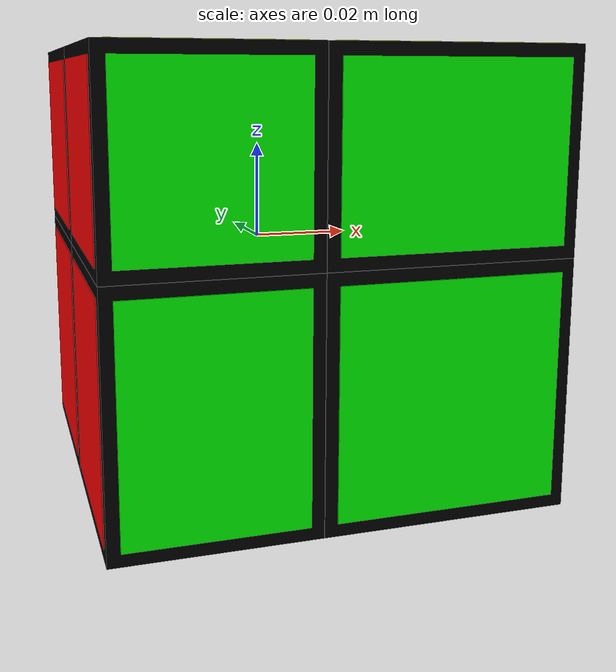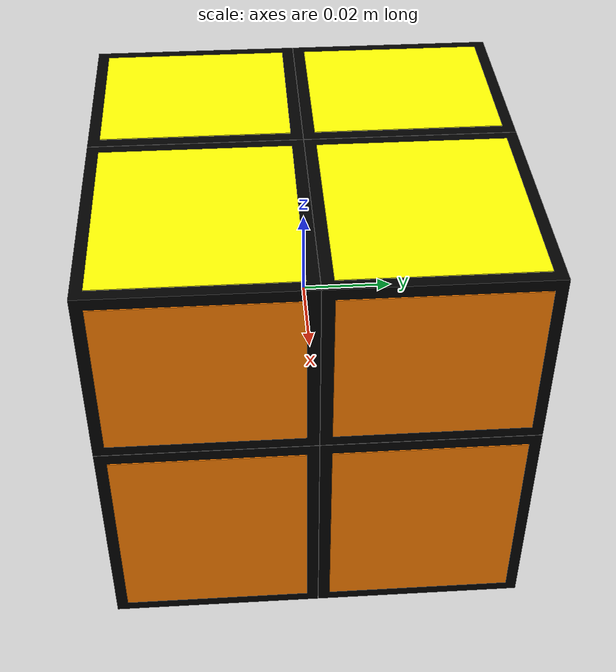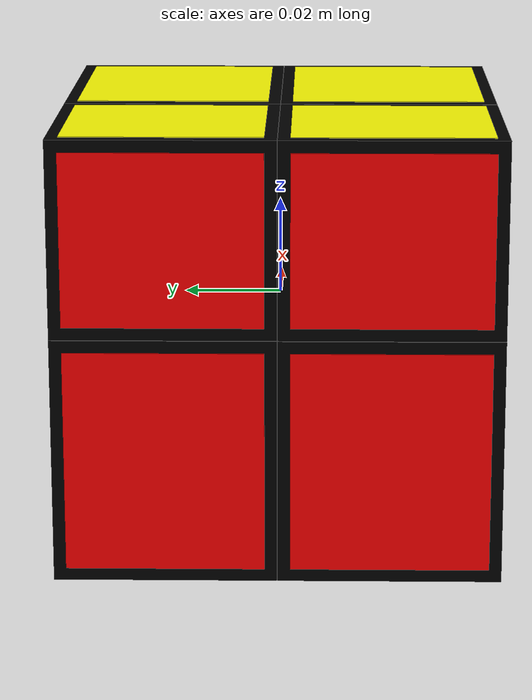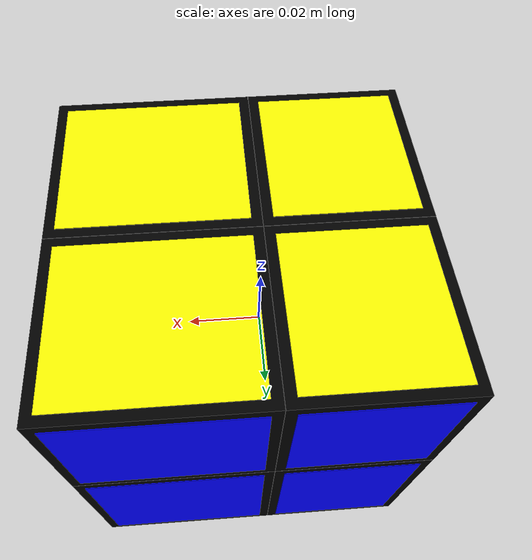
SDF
<?xml version="1.0" ?>
<sdf version="1.7">
	<model name="mirror_cube_2x2">
		<link name="center"/>
		<link name="cubie_0_0_0">
			<pose>-0.020050000000000002 -0.02255 -0.02505 0.0 0.0 0.0</pose>
			<inertial>
				<mass>0.0351</mass>
				<inertia>
					<ixx>1.3235625e-05</ixx>
					<ixy>0.0</ixy>
					<ixz>0.0</ixz>
					<iyy>1.1992499999999999e-05</iyy>
					<iyz>0.0</iyz>
					<izz>1.0603125e-05</izz>
				</inertia>
			</inertial>
			<collision name="collision">
				<geometry>
					<box>
						<size>0.04 0.045 0.049999999999999996</size>
					</box>
				</geometry>
				<surface>
					<friction>
						<ode>
							<mu>0.6</mu>
							<mu2>0.6</mu2>
						</ode>
					</friction>
				</surface>
			</collision>
			<visual name="black">
				<geometry>
					<box>
						<size>0.04 0.045 0.049999999999999996</size>
					</box>
				</geometry>
				<material>
					<diffuse>0 0 0 1</diffuse>
				</material>
			</visual>
			<visual name="red">
				<pose>-0.02 0.0 0.0 0.0 0.0 0.0</pose>
				<geometry>
					<box>
						<size>0.00035 0.04 0.045</size>
					</box>
				</geometry>
				<material>
					<diffuse>1 0 0 1</diffuse>
				</material>
			</visual>
			<visual name="green">
				<pose>0.0 -0.0225 0.0 0.0 0.0 0.0</pose>
				<geometry>
					<box>
						<size>0.035 0.0004 0.045</size>
					</box>
				</geometry>
				<material>
					<diffuse>0 1 0 1</diffuse>
				</material>
			</visual>
			<visual name="white">
				<pose>0.0 0.0 -0.024999999999999998 0.0 0.0 0.0</pose>
				<geometry>
					<box>
						<size>0.035 0.04 0.00045</size>
					</box>
				</geometry>
				<material>
					<diffuse>1 1 1 1</diffuse>
				</material>
			</visual>
		</link>
		<joint name="ball_0_0_0" type="ball">
			<pose>0.020050000000000002 0.02255 0.02505 -0.0 -0.0 -0.0</pose>
			<parent>center</parent>
			<child>cubie_0_0_0</child>
			<axis>
				<dynamics>
					<damping>0.1</damping>
				</dynamics>
				<limit>
					<effort>0</effort>
				</limit>
			</axis>
		</joint>
		<link name="cubie_0_0_1">
			<pose>-0.020050000000000002 -0.02255 0.020050000000000002 0.0 0.0 0.0</pose>
			<inertial>
				<mass>0.02808</mass>
				<inertia>
					<ixx>8.482499999999999e-06</ixx>
					<ixy>0.0</ixy>
					<ixz>0.0</ixz>
					<iyy>7.488000000000001e-06</iyy>
					<iyz>0.0</iyz>
					<izz>8.482499999999999e-06</izz>
				</inertia>
			</inertial>
			<collision name="collision">
				<geometry>
					<box>
						<size>0.04 0.045 0.04</size>
					</box>
				</geometry>
				<surface>
					<friction>
						<ode>
							<mu>0.6</mu>
							<mu2>0.6</mu2>
						</ode>
					</friction>
				</surface>
			</collision>
			<visual name="black">
				<geometry>
					<box>
						<size>0.04 0.045 0.04</size>
					</box>
				</geometry>
				<material>
					<diffuse>0 0 0 1</diffuse>
				</material>
			</visual>
			<visual name="red">
				<pose>-0.02 0.0 0.0 0.0 0.0 0.0</pose>
				<geometry>
					<box>
						<size>0.00035 0.04 0.035</size>
					</box>
				</geometry>
				<material>
					<diffuse>1 0 0 1</diffuse>
				</material>
			</visual>
			<visual name="green">
				<pose>0.0 -0.0225 0.0 0.0 0.0 0.0</pose>
				<geometry>
					<box>
						<size>0.035 0.0004 0.035</size>
					</box>
				</geometry>
				<material>
					<diffuse>0 1 0 1</diffuse>
				</material>
			</visual>
			<visual name="yellow">
				<pose>0.0 0.0 0.02 0.0 0.0 0.0</pose>
				<geometry>
					<box>
						<size>0.035 0.04 0.00035</size>
					</box>
				</geometry>
				<material>
					<diffuse>1 1 0 1</diffuse>
				</material>
			</visual>
		</link>
		<joint name="ball_0_0_1" type="ball">
			<pose>0.020050000000000002 0.02255 -0.020050000000000002 -0.0 -0.0 -0.0</pose>
			<parent>center</parent>
			<child>cubie_0_0_1</child>
			<axis>
				<dynamics>
					<damping>0.1</damping>
				</dynamics>
				<limit>
					<effort>0</effort>
				</limit>
			</axis>
		</joint>
		<link name="cubie_0_1_0">
			<pose>-0.020050000000000002 0.02255 -0.02505 0.0 0.0 0.0</pose>
			<inertial>
				<mass>0.0351</mass>
				<inertia>
					<ixx>1.3235625e-05</ixx>
					<ixy>0.0</ixy>
					<ixz>0.0</ixz>
					<iyy>1.1992499999999999e-05</iyy>
					<iyz>0.0</iyz>
					<izz>1.0603125e-05</izz>
				</inertia>
			</inertial>
			<collision name="collision">
				<geometry>
					<box>
						<size>0.04 0.045 0.049999999999999996</size>
					</box>
				</geometry>
				<surface>
					<friction>
						<ode>
							<mu>0.6</mu>
							<mu2>0.6</mu2>
						</ode>
					</friction>
				</surface>
			</collision>
			<visual name="black">
				<geometry>
					<box>
						<size>0.04 0.045 0.049999999999999996</size>
					</box>
				</geometry>
				<material>
					<diffuse>0 0 0 1</diffuse>
				</material>
			</visual>
			<visual name="red">
				<pose>-0.02 0.0 0.0 0.0 0.0 0.0</pose>
				<geometry>
					<box>
						<size>0.00035 0.04 0.045</size>
					</box>
				</geometry>
				<material>
					<diffuse>1 0 0 1</diffuse>
				</material>
			</visual>
			<visual name="blue">
				<pose>0.0 0.0225 0.0 0.0 0.0 0.0</pose>
				<geometry>
					<box>
						<size>0.035 0.0004 0.045</size>
					</box>
				</geometry>
				<material>
					<diffuse>0 0 1 1</diffuse>
				</material>
			</visual>
			<visual name="white">
				<pose>0.0 0.0 -0.024999999999999998 0.0 0.0 0.0</pose>
				<geometry>
					<box>
						<size>0.035 0.04 0.00045</size>
					</box>
				</geometry>
				<material>
					<diffuse>1 1 1 1</diffuse>
				</material>
			</visual>
		</link>
		<joint name="ball_0_1_0" type="ball">
			<pose>0.020050000000000002 -0.02255 0.02505 -0.0 -0.0 -0.0</pose>
			<parent>center</parent>
			<child>cubie_0_1_0</child>
			<axis>
				<dynamics>
					<damping>0.1</damping>
				</dynamics>
				<limit>
					<effort>0</effort>
				</limit>
			</axis>
		</joint>
		<link name="cubie_0_1_1">
			<pose>-0.020050000000000002 0.02255 0.020050000000000002 0.0 0.0 0.0</pose>
			<inertial>
				<mass>0.02808</mass>
				<inertia>
					<ixx>8.482499999999999e-06</ixx>
					<ixy>0.0</ixy>
					<ixz>0.0</ixz>
					<iyy>7.488000000000001e-06</iyy>
					<iyz>0.0</iyz>
					<izz>8.482499999999999e-06</izz>
				</inertia>
			</inertial>
			<collision name="collision">
				<geometry>
					<box>
						<size>0.04 0.045 0.04</size>
					</box>
				</geometry>
				<surface>
					<friction>
						<ode>
							<mu>0.6</mu>
							<mu2>0.6</mu2>
						</ode>
					</friction>
				</surface>
			</collision>
			<visual name="black">
				<geometry>
					<box>
						<size>0.04 0.045 0.04</size>
					</box>
				</geometry>
				<material>
					<diffuse>0 0 0 1</diffuse>
				</material>
			</visual>
			<visual name="red">
				<pose>-0.02 0.0 0.0 0.0 0.0 0.0</pose>
				<geometry>
					<box>
						<size>0.00035 0.04 0.035</size>
					</box>
				</geometry>
				<material>
					<diffuse>1 0 0 1</diffuse>
				</material>
			</visual>
			<visual name="blue">
				<pose>0.0 0.0225 0.0 0.0 0.0 0.0</pose>
				<geometry>
					<box>
						<size>0.035 0.0004 0.035</size>
					</box>
				</geometry>
				<material>
					<diffuse>0 0 1 1</diffuse>
				</material>
			</visual>
			<visual name="yellow">
				<pose>0.0 0.0 0.02 0.0 0.0 0.0</pose>
				<geometry>
					<box>
						<size>0.035 0.04 0.00035</size>
					</box>
				</geometry>
				<material>
					<diffuse>1 1 0 1</diffuse>
				</material>
			</visual>
		</link>
		<joint name="ball_0_1_1" type="ball">
			<pose>0.020050000000000002 -0.02255 -0.020050000000000002 -0.0 -0.0 -0.0</pose>
			<parent>center</parent>
			<child>cubie_0_1_1</child>
			<axis>
				<dynamics>
					<damping>0.1</damping>
				</dynamics>
				<limit>
					<effort>0</effort>
				</limit>
			</axis>
		</joint>
		<link name="cubie_1_0_0">
			<pose>0.02505 -0.02255 -0.02505 0.0 0.0 0.0</pose>
			<inertial>
				<mass>0.04387499999999999</mass>
				<inertia>
					<ixx>1.6544531249999994e-05</ixx>
					<ixy>0.0</ixy>
					<ixz>0.0</ixz>
					<iyy>1.8281249999999994e-05</iyy>
					<iyz>0.0</iyz>
					<izz>1.6544531249999994e-05</izz>
				</inertia>
			</inertial>
			<collision name="collision">
				<geometry>
					<box>
						<size>0.049999999999999996 0.045 0.049999999999999996</size>
					</box>
				</geometry>
				<surface>
					<friction>
						<ode>
							<mu>0.6</mu>
							<mu2>0.6</mu2>
						</ode>
					</friction>
				</surface>
			</collision>
			<visual name="black">
				<geometry>
					<box>
						<size>0.049999999999999996 0.045 0.049999999999999996</size>
					</box>
				</geometry>
				<material>
					<diffuse>0 0 0 1</diffuse>
				</material>
			</visual>
			<visual name="orange">
				<pose>0.024999999999999998 0.0 0.0 0.0 0.0 0.0</pose>
				<geometry>
					<box>
						<size>0.00045 0.04 0.045</size>
					</box>
				</geometry>
				<material>
					<diffuse>1.0 0.5 0.0 1.0</diffuse>
				</material>
			</visual>
			<visual name="green">
				<pose>0.0 -0.0225 0.0 0.0 0.0 0.0</pose>
				<geometry>
					<box>
						<size>0.045 0.0004 0.045</size>
					</box>
				</geometry>
				<material>
					<diffuse>0 1 0 1</diffuse>
				</material>
			</visual>
			<visual name="white">
				<pose>0.0 0.0 -0.024999999999999998 0.0 0.0 0.0</pose>
				<geometry>
					<box>
						<size>0.045 0.04 0.00045</size>
					</box>
				</geometry>
				<material>
					<diffuse>1 1 1 1</diffuse>
				</material>
			</visual>
		</link>
		<joint name="ball_1_0_0" type="ball">
			<pose>-0.02505 0.02255 0.02505 -0.0 -0.0 -0.0</pose>
			<parent>center</parent>
			<child>cubie_1_0_0</child>
			<axis>
				<dynamics>
					<damping>0.1</damping>
				</dynamics>
				<limit>
					<effort>0</effort>
				</limit>
			</axis>
		</joint>
		<link name="cubie_1_0_1">
			<pose>0.02505 -0.02255 0.020050000000000002 0.0 0.0 0.0</pose>
			<inertial>
				<mass>0.0351</mass>
				<inertia>
					<ixx>1.0603125e-05</ixx>
					<ixy>0.0</ixy>
					<ixz>0.0</ixz>
					<iyy>1.1992499999999999e-05</iyy>
					<iyz>0.0</iyz>
					<izz>1.3235625e-05</izz>
				</inertia>
			</inertial>
			<collision name="collision">
				<geometry>
					<box>
						<size>0.049999999999999996 0.045 0.04</size>
					</box>
				</geometry>
				<surface>
					<friction>
						<ode>
							<mu>0.6</mu>
							<mu2>0.6</mu2>
						</ode>
					</friction>
				</surface>
			</collision>
			<visual name="black">
				<geometry>
					<box>
						<size>0.049999999999999996 0.045 0.04</size>
					</box>
				</geometry>
				<material>
					<diffuse>0 0 0 1</diffuse>
				</material>
			</visual>
			<visual name="orange">
				<pose>0.024999999999999998 0.0 0.0 0.0 0.0 0.0</pose>
				<geometry>
					<box>
						<size>0.00045 0.04 0.035</size>
					</box>
				</geometry>
				<material>
					<diffuse>1.0 0.5 0.0 1.0</diffuse>
				</material>
			</visual>
			<visual name="green">
				<pose>0.0 -0.0225 0.0 0.0 0.0 0.0</pose>
				<geometry>
					<box>
						<size>0.045 0.0004 0.035</size>
					</box>
				</geometry>
				<material>
					<diffuse>0 1 0 1</diffuse>
				</material>
			</visual>
			<visual name="yellow">
				<pose>0.0 0.0 0.02 0.0 0.0 0.0</pose>
				<geometry>
					<box>
						<size>0.045 0.04 0.00035</size>
					</box>
				</geometry>
				<material>
					<diffuse>1 1 0 1</diffuse>
				</material>
			</visual>
		</link>
		<joint name="ball_1_0_1" type="ball">
			<pose>-0.02505 0.02255 -0.020050000000000002 -0.0 -0.0 -0.0</pose>
			<parent>center</parent>
			<child>cubie_1_0_1</child>
			<axis>
				<dynamics>
					<damping>0.1</damping>
				</dynamics>
				<limit>
					<effort>0</effort>
				</limit>
			</axis>
		</joint>
		<link name="cubie_1_1_0">
			<pose>0.02505 0.02255 -0.02505 0.0 0.0 0.0</pose>
			<inertial>
				<mass>0.04387499999999999</mass>
				<inertia>
					<ixx>1.6544531249999994e-05</ixx>
					<ixy>0.0</ixy>
					<ixz>0.0</ixz>
					<iyy>1.8281249999999994e-05</iyy>
					<iyz>0.0</iyz>
					<izz>1.6544531249999994e-05</izz>
				</inertia>
			</inertial>
			<collision name="collision">
				<geometry>
					<box>
						<size>0.049999999999999996 0.045 0.049999999999999996</size>
					</box>
				</geometry>
				<surface>
					<friction>
						<ode>
							<mu>0.6</mu>
							<mu2>0.6</mu2>
						</ode>
					</friction>
				</surface>
			</collision>
			<visual name="black">
				<geometry>
					<box>
						<size>0.049999999999999996 0.045 0.049999999999999996</size>
					</box>
				</geometry>
				<material>
					<diffuse>0 0 0 1</diffuse>
				</material>
			</visual>
			<visual name="orange">
				<pose>0.024999999999999998 0.0 0.0 0.0 0.0 0.0</pose>
				<geometry>
					<box>
						<size>0.00045 0.04 0.045</size>
					</box>
				</geometry>
				<material>
					<diffuse>1.0 0.5 0.0 1.0</diffuse>
				</material>
			</visual>
			<visual name="blue">
				<pose>0.0 0.0225 0.0 0.0 0.0 0.0</pose>
				<geometry>
					<box>
						<size>0.045 0.0004 0.045</size>
					</box>
				</geometry>
				<material>
					<diffuse>0 0 1 1</diffuse>
				</material>
			</visual>
			<visual name="white">
				<pose>0.0 0.0 -0.024999999999999998 0.0 0.0 0.0</pose>
				<geometry>
					<box>
						<size>0.045 0.04 0.00045</size>
					</box>
				</geometry>
				<material>
					<diffuse>1 1 1 1</diffuse>
				</material>
			</visual>
		</link>
		<joint name="ball_1_1_0" type="ball">
			<pose>-0.02505 -0.02255 0.02505 -0.0 -0.0 -0.0</pose>
			<parent>center</parent>
			<child>cubie_1_1_0</child>
			<axis>
				<dynamics>
					<damping>0.1</damping>
				</dynamics>
				<limit>
					<effort>0</effort>
				</limit>
			</axis>
		</joint>
		<link name="cubie_1_1_1">
			<pose>0.02505 0.02255 0.020050000000000002 0.0 0.0 0.0</pose>
			<inertial>
				<mass>0.0351</mass>
				<inertia>
					<ixx>1.0603125e-05</ixx>
					<ixy>0.0</ixy>
					<ixz>0.0</ixz>
					<iyy>1.1992499999999999e-05</iyy>
					<iyz>0.0</iyz>
					<izz>1.3235625e-05</izz>
				</inertia>
			</inertial>
			<collision name="collision">
				<geometry>
					<box>
						<size>0.049999999999999996 0.045 0.04</size>
					</box>
				</geometry>
				<surface>
					<friction>
						<ode>
							<mu>0.6</mu>
							<mu2>0.6</mu2>
						</ode>
					</friction>
				</surface>
			</collision>
			<visual name="black">
				<geometry>
					<box>
						<size>0.049999999999999996 0.045 0.04</size>
					</box>
				</geometry>
				<material>
					<diffuse>0 0 0 1</diffuse>
				</material>
			</visual>
			<visual name="orange">
				<pose>0.024999999999999998 0.0 0.0 0.0 0.0 0.0</pose>
				<geometry>
					<box>
						<size>0.00045 0.04 0.035</size>
					</box>
				</geometry>
				<material>
					<diffuse>1.0 0.5 0.0 1.0</diffuse>
				</material>
			</visual>
			<visual name="blue">
				<pose>0.0 0.0225 0.0 0.0 0.0 0.0</pose>
				<geometry>
					<box>
						<size>0.045 0.0004 0.035</size>
					</box>
				</geometry>
				<material>
					<diffuse>0 0 1 1</diffuse>
				</material>
			</visual>
			<visual name="yellow">
				<pose>0.0 0.0 0.02 0.0 0.0 0.0</pose>
				<geometry>
					<box>
						<size>0.045 0.04 0.00035</size>
					</box>
				</geometry>
				<material>
					<diffuse>1 1 0 1</diffuse>
				</material>
			</visual>
		</link>
		<joint name="ball_1_1_1" type="ball">
			<pose>-0.02505 -0.02255 -0.020050000000000002 -0.0 -0.0 -0.0</pose>
			<parent>center</parent>
			<child>cubie_1_1_1</child>
			<axis>
				<dynamics>
					<damping>0.1</damping>
				</dynamics>
				<limit>
					<effort>0</effort>
				</limit>
			</axis>
		</joint>
	</model>
</sdf>
